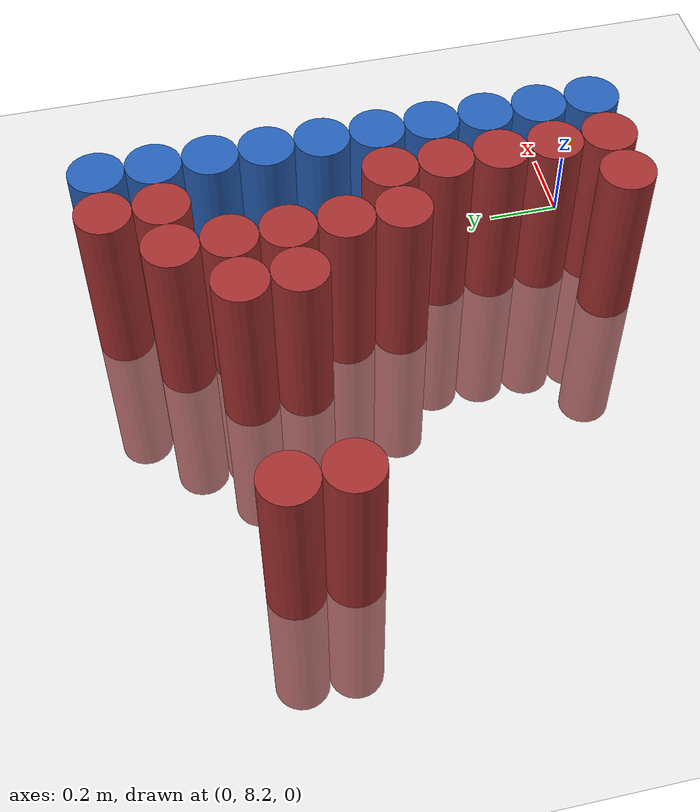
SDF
<sdf version="1.6">
 <world name="default">
  <model name="ground_plane">
   <static>1</static>
   <link name="link">
    <collision name="collision">
     <geometry><plane><normal>0 0 1</normal><size>100 100</size></plane></geometry>
     <surface><friction><ode><mu>100</mu><mu2>50</mu2></ode></friction></surface>
    </collision>
    <visual name="visual">
     <cast_shadows>0</cast_shadows>
     <geometry><plane><normal>0 0 1</normal><size>100 100</size></plane></geometry>
     <material>
      <script><uri>file://media/materials/scripts/gazebo.material</uri><name>Gazebo/Grey</name></script>
     </material>
    </visual>
   </link>
  </model>
  <model name="unit_cylinder_156">
   <static>1</static>
   <pose>-1.125000 9.075000 0.000000 0.000000 0.000000 0.000000</pose>
   <link name="link">
    <inertial>
     <mass>1</mass>
     <inertia><ixx>0.145833</ixx><ixy>0</ixy><ixz>0</ixz><iyy>0.145833</iyy><iyz>0</iyz><izz>0.125</izz></inertia>
    </inertial>
    <collision name="collision">
     <geometry><cylinder><radius>0.075000</radius><length>1</length></cylinder></geometry>
    </collision>
    <visual name="visual">
     <geometry><cylinder><radius>0.075000</radius><length>1</length></cylinder></geometry>
     <material>
      <ambient>0.648000 0.192000 0.192000 1</ambient>
      <diffuse>0.648000 0.192000 0.192000 1</diffuse>
     </material>
     <material>
      <script><name>Gazebo/Grey</name><uri>file://media/materials/scripts/gazebo.material</uri></script>
     </material>
    </visual>
   </link>
  </model>
  <model name="unit_cylinder_157">
   <static>1</static>
   <pose>-1.125000 9.225000 0.000000 0.000000 0.000000 0.000000</pose>
   <link name="link">
    <inertial>
     <mass>1</mass>
     <inertia><ixx>0.145833</ixx><ixy>0</ixy><ixz>0</ixz><iyy>0.145833</iyy><iyz>0</iyz><izz>0.125</izz></inertia>
    </inertial>
    <collision name="collision">
     <geometry><cylinder><radius>0.075000</radius><length>1</length></cylinder></geometry>
    </collision>
    <visual name="visual">
     <geometry><cylinder><radius>0.075000</radius><length>1</length></cylinder></geometry>
     <material>
      <ambient>0.648000 0.192000 0.192000 1</ambient>
      <diffuse>0.648000 0.192000 0.192000 1</diffuse>
     </material>
     <material>
      <script><name>Gazebo/Grey</name><uri>file://media/materials/scripts/gazebo.material</uri></script>
     </material>
    </visual>
   </link>
  </model>
  <model name="unit_cylinder_165">
   <static>1</static>
   <pose>-0.525000 9.075000 0.000000 0.000000 0.000000 0.000000</pose>
   <link name="link">
    <inertial>
     <mass>1</mass>
     <inertia><ixx>0.145833</ixx><ixy>0</ixy><ixz>0</ixz><iyy>0.145833</iyy><iyz>0</iyz><izz>0.125</izz></inertia>
    </inertial>
    <collision name="collision">
     <geometry><cylinder><radius>0.075000</radius><length>1</length></cylinder></geometry>
    </collision>
    <visual name="visual">
     <geometry><cylinder><radius>0.075000</radius><length>1</length></cylinder></geometry>
     <material>
      <ambient>0.648000 0.192000 0.192000 1</ambient>
      <diffuse>0.648000 0.192000 0.192000 1</diffuse>
     </material>
     <material>
      <script><name>Gazebo/Grey</name><uri>file://media/materials/scripts/gazebo.material</uri></script>
     </material>
    </visual>
   </link>
  </model>
  <model name="unit_cylinder_166">
   <static>1</static>
   <pose>-0.525000 9.225000 0.000000 0.000000 0.000000 0.000000</pose>
   <link name="link">
    <inertial>
     <mass>1</mass>
     <inertia><ixx>0.145833</ixx><ixy>0</ixy><ixz>0</ixz><iyy>0.145833</iyy><iyz>0</iyz><izz>0.125</izz></inertia>
    </inertial>
    <collision name="collision">
     <geometry><cylinder><radius>0.075000</radius><length>1</length></cylinder></geometry>
    </collision>
    <visual name="visual">
     <geometry><cylinder><radius>0.075000</radius><length>1</length></cylinder></geometry>
     <material>
      <ambient>0.648000 0.192000 0.192000 1</ambient>
      <diffuse>0.648000 0.192000 0.192000 1</diffuse>
     </material>
     <material>
      <script><name>Gazebo/Grey</name><uri>file://media/materials/scripts/gazebo.material</uri></script>
     </material>
    </visual>
   </link>
  </model>
  <model name="unit_cylinder_169">
   <static>1</static>
   <pose>-0.375000 8.175000 0.000000 0.000000 0.000000 0.000000</pose>
   <link name="link">
    <inertial>
     <mass>1</mass>
     <inertia><ixx>0.145833</ixx><ixy>0</ixy><ixz>0</ixz><iyy>0.145833</iyy><iyz>0</iyz><izz>0.125</izz></inertia>
    </inertial>
    <collision name="collision">
     <geometry><cylinder><radius>0.075000</radius><length>1</length></cylinder></geometry>
    </collision>
    <visual name="visual">
     <geometry><cylinder><radius>0.075000</radius><length>1</length></cylinder></geometry>
     <material>
      <ambient>0.648000 0.192000 0.192000 1</ambient>
      <diffuse>0.648000 0.192000 0.192000 1</diffuse>
     </material>
     <material>
      <script><name>Gazebo/Grey</name><uri>file://media/materials/scripts/gazebo.material</uri></script>
     </material>
    </visual>
   </link>
  </model>
  <model name="unit_cylinder_170">
   <static>1</static>
   <pose>-0.375000 8.775000 0.000000 0.000000 0.000000 0.000000</pose>
   <link name="link">
    <inertial>
     <mass>1</mass>
     <inertia><ixx>0.145833</ixx><ixy>0</ixy><ixz>0</ixz><iyy>0.145833</iyy><iyz>0</iyz><izz>0.125</izz></inertia>
    </inertial>
    <collision name="collision">
     <geometry><cylinder><radius>0.075000</radius><length>1</length></cylinder></geometry>
    </collision>
    <visual name="visual">
     <geometry><cylinder><radius>0.075000</radius><length>1</length></cylinder></geometry>
     <material>
      <ambient>0.648000 0.192000 0.192000 1</ambient>
      <diffuse>0.648000 0.192000 0.192000 1</diffuse>
     </material>
     <material>
      <script><name>Gazebo/Grey</name><uri>file://media/materials/scripts/gazebo.material</uri></script>
     </material>
    </visual>
   </link>
  </model>
  <model name="unit_cylinder_171">
   <static>1</static>
   <pose>-0.375000 8.925000 0.000000 0.000000 0.000000 0.000000</pose>
   <link name="link">
    <inertial>
     <mass>1</mass>
     <inertia><ixx>0.145833</ixx><ixy>0</ixy><ixz>0</ixz><iyy>0.145833</iyy><iyz>0</iyz><izz>0.125</izz></inertia>
    </inertial>
    <collision name="collision">
     <geometry><cylinder><radius>0.075000</radius><length>1</length></cylinder></geometry>
    </collision>
    <visual name="visual">
     <geometry><cylinder><radius>0.075000</radius><length>1</length></cylinder></geometry>
     <material>
      <ambient>0.648000 0.192000 0.192000 1</ambient>
      <diffuse>0.648000 0.192000 0.192000 1</diffuse>
     </material>
     <material>
      <script><name>Gazebo/Grey</name><uri>file://media/materials/scripts/gazebo.material</uri></script>
     </material>
    </visual>
   </link>
  </model>
  <model name="unit_cylinder_172">
   <static>1</static>
   <pose>-0.375000 9.075000 0.000000 0.000000 0.000000 0.000000</pose>
   <link name="link">
    <inertial>
     <mass>1</mass>
     <inertia><ixx>0.145833</ixx><ixy>0</ixy><ixz>0</ixz><iyy>0.145833</iyy><iyz>0</iyz><izz>0.125</izz></inertia>
    </inertial>
    <collision name="collision">
     <geometry><cylinder><radius>0.075000</radius><length>1</length></cylinder></geometry>
    </collision>
    <visual name="visual">
     <geometry><cylinder><radius>0.075000</radius><length>1</length></cylinder></geometry>
     <material>
      <ambient>0.648000 0.192000 0.192000 1</ambient>
      <diffuse>0.648000 0.192000 0.192000 1</diffuse>
     </material>
     <material>
      <script><name>Gazebo/Grey</name><uri>file://media/materials/scripts/gazebo.material</uri></script>
     </material>
    </visual>
   </link>
  </model>
  <model name="unit_cylinder_173">
   <static>1</static>
   <pose>-0.375000 9.225000 0.000000 0.000000 0.000000 0.000000</pose>
   <link name="link">
    <inertial>
     <mass>1</mass>
     <inertia><ixx>0.145833</ixx><ixy>0</ixy><ixz>0</ixz><iyy>0.145833</iyy><iyz>0</iyz><izz>0.125</izz></inertia>
    </inertial>
    <collision name="collision">
     <geometry><cylinder><radius>0.075000</radius><length>1</length></cylinder></geometry>
    </collision>
    <visual name="visual">
     <geometry><cylinder><radius>0.075000</radius><length>1</length></cylinder></geometry>
     <material>
      <ambient>0.648000 0.192000 0.192000 1</ambient>
      <diffuse>0.648000 0.192000 0.192000 1</diffuse>
     </material>
     <material>
      <script><name>Gazebo/Grey</name><uri>file://media/materials/scripts/gazebo.material</uri></script>
     </material>
    </visual>
   </link>
  </model>
  <model name="unit_cylinder_174">
   <static>1</static>
   <pose>-0.375000 9.375000 0.000000 0.000000 0.000000 0.000000</pose>
   <link name="link">
    <inertial>
     <mass>1</mass>
     <inertia><ixx>0.145833</ixx><ixy>0</ixy><ixz>0</ixz><iyy>0.145833</iyy><iyz>0</iyz><izz>0.125</izz></inertia>
    </inertial>
    <collision name="collision">
     <geometry><cylinder><radius>0.075000</radius><length>1</length></cylinder></geometry>
    </collision>
    <visual name="visual">
     <geometry><cylinder><radius>0.075000</radius><length>1</length></cylinder></geometry>
     <material>
      <ambient>0.648000 0.192000 0.192000 1</ambient>
      <diffuse>0.648000 0.192000 0.192000 1</diffuse>
     </material>
     <material>
      <script><name>Gazebo/Grey</name><uri>file://media/materials/scripts/gazebo.material</uri></script>
     </material>
    </visual>
   </link>
  </model>
  <model name="unit_cylinder_179">
   <static>1</static>
   <pose>-0.225000 8.175000 0.000000 0.000000 0.000000 0.000000</pose>
   <link name="link">
    <inertial>
     <mass>1</mass>
     <inertia><ixx>0.145833</ixx><ixy>0</ixy><ixz>0</ixz><iyy>0.145833</iyy><iyz>0</iyz><izz>0.125</izz></inertia>
    </inertial>
    <collision name="collision">
     <geometry><cylinder><radius>0.075000</radius><length>1</length></cylinder></geometry>
    </collision>
    <visual name="visual">
     <geometry><cylinder><radius>0.075000</radius><length>1</length></cylinder></geometry>
     <material>
      <ambient>0.648000 0.192000 0.192000 1</ambient>
      <diffuse>0.648000 0.192000 0.192000 1</diffuse>
     </material>
     <material>
      <script><name>Gazebo/Grey</name><uri>file://media/materials/scripts/gazebo.material</uri></script>
     </material>
    </visual>
   </link>
  </model>
  <model name="unit_cylinder_180">
   <static>1</static>
   <pose>-0.225000 8.325000 0.000000 0.000000 0.000000 0.000000</pose>
   <link name="link">
    <inertial>
     <mass>1</mass>
     <inertia><ixx>0.145833</ixx><ixy>0</ixy><ixz>0</ixz><iyy>0.145833</iyy><iyz>0</iyz><izz>0.125</izz></inertia>
    </inertial>
    <collision name="collision">
     <geometry><cylinder><radius>0.075000</radius><length>1</length></cylinder></geometry>
    </collision>
    <visual name="visual">
     <geometry><cylinder><radius>0.075000</radius><length>1</length></cylinder></geometry>
     <material>
      <ambient>0.648000 0.192000 0.192000 1</ambient>
      <diffuse>0.648000 0.192000 0.192000 1</diffuse>
     </material>
     <material>
      <script><name>Gazebo/Grey</name><uri>file://media/materials/scripts/gazebo.material</uri></script>
     </material>
    </visual>
   </link>
  </model>
  <model name="unit_cylinder_181">
   <static>1</static>
   <pose>-0.225000 8.475000 0.000000 0.000000 0.000000 0.000000</pose>
   <link name="link">
    <inertial>
     <mass>1</mass>
     <inertia><ixx>0.145833</ixx><ixy>0</ixy><ixz>0</ixz><iyy>0.145833</iyy><iyz>0</iyz><izz>0.125</izz></inertia>
    </inertial>
    <collision name="collision">
     <geometry><cylinder><radius>0.075000</radius><length>1</length></cylinder></geometry>
    </collision>
    <visual name="visual">
     <geometry><cylinder><radius>0.075000</radius><length>1</length></cylinder></geometry>
     <material>
      <ambient>0.648000 0.192000 0.192000 1</ambient>
      <diffuse>0.648000 0.192000 0.192000 1</diffuse>
     </material>
     <material>
      <script><name>Gazebo/Grey</name><uri>file://media/materials/scripts/gazebo.material</uri></script>
     </material>
    </visual>
   </link>
  </model>
  <model name="unit_cylinder_182">
   <static>1</static>
   <pose>-0.225000 8.625000 0.000000 0.000000 0.000000 0.000000</pose>
   <link name="link">
    <inertial>
     <mass>1</mass>
     <inertia><ixx>0.145833</ixx><ixy>0</ixy><ixz>0</ixz><iyy>0.145833</iyy><iyz>0</iyz><izz>0.125</izz></inertia>
    </inertial>
    <collision name="collision">
     <geometry><cylinder><radius>0.075000</radius><length>1</length></cylinder></geometry>
    </collision>
    <visual name="visual">
     <geometry><cylinder><radius>0.075000</radius><length>1</length></cylinder></geometry>
     <material>
      <ambient>0.648000 0.192000 0.192000 1</ambient>
      <diffuse>0.648000 0.192000 0.192000 1</diffuse>
     </material>
     <material>
      <script><name>Gazebo/Grey</name><uri>file://media/materials/scripts/gazebo.material</uri></script>
     </material>
    </visual>
   </link>
  </model>
  <model name="unit_cylinder_183">
   <static>1</static>
   <pose>-0.225000 8.775000 0.000000 0.000000 0.000000 0.000000</pose>
   <link name="link">
    <inertial>
     <mass>1</mass>
     <inertia><ixx>0.145833</ixx><ixy>0</ixy><ixz>0</ixz><iyy>0.145833</iyy><iyz>0</iyz><izz>0.125</izz></inertia>
    </inertial>
    <collision name="collision">
     <geometry><cylinder><radius>0.075000</radius><length>1</length></cylinder></geometry>
    </collision>
    <visual name="visual">
     <geometry><cylinder><radius>0.075000</radius><length>1</length></cylinder></geometry>
     <material>
      <ambient>0.648000 0.192000 0.192000 1</ambient>
      <diffuse>0.648000 0.192000 0.192000 1</diffuse>
     </material>
     <material>
      <script><name>Gazebo/Grey</name><uri>file://media/materials/scripts/gazebo.material</uri></script>
     </material>
    </visual>
   </link>
  </model>
  <model name="unit_cylinder_184">
   <static>1</static>
   <pose>-0.225000 9.375000 0.000000 0.000000 0.000000 0.000000</pose>
   <link name="link">
    <inertial>
     <mass>1</mass>
     <inertia><ixx>0.145833</ixx><ixy>0</ixy><ixz>0</ixz><iyy>0.145833</iyy><iyz>0</iyz><izz>0.125</izz></inertia>
    </inertial>
    <collision name="collision">
     <geometry><cylinder><radius>0.075000</radius><length>1</length></cylinder></geometry>
    </collision>
    <visual name="visual">
     <geometry><cylinder><radius>0.075000</radius><length>1</length></cylinder></geometry>
     <material>
      <ambient>0.648000 0.192000 0.192000 1</ambient>
      <diffuse>0.648000 0.192000 0.192000 1</diffuse>
     </material>
     <material>
      <script><name>Gazebo/Grey</name><uri>file://media/materials/scripts/gazebo.material</uri></script>
     </material>
    </visual>
   </link>
  </model>
  <model name="unit_cylinder_185">
   <static>1</static>
   <pose>-0.225000 9.525000 0.000000 0.000000 0.000000 0.000000</pose>
   <link name="link">
    <inertial>
     <mass>1</mass>
     <inertia><ixx>0.145833</ixx><ixy>0</ixy><ixz>0</ixz><iyy>0.145833</iyy><iyz>0</iyz><izz>0.125</izz></inertia>
    </inertial>
    <collision name="collision">
     <geometry><cylinder><radius>0.075000</radius><length>1</length></cylinder></geometry>
    </collision>
    <visual name="visual">
     <geometry><cylinder><radius>0.075000</radius><length>1</length></cylinder></geometry>
     <material>
      <ambient>0.648000 0.192000 0.192000 1</ambient>
      <diffuse>0.648000 0.192000 0.192000 1</diffuse>
     </material>
     <material>
      <script><name>Gazebo/Grey</name><uri>file://media/materials/scripts/gazebo.material</uri></script>
     </material>
    </visual>
   </link>
  </model>
  <model name="unit_cylinder_206">
   <static>1</static>
   <pose>-0.075000 8.175000 0.000000 0.000000 0.000000 0.000000</pose>
   <link name="link">
    <inertial>
     <mass>1</mass>
     <inertia><ixx>0.145833</ixx><ixy>0</ixy><ixz>0</ixz><iyy>0.145833</iyy><iyz>0</iyz><izz>0.125</izz></inertia>
    </inertial>
    <collision name="collision">
     <geometry><cylinder><radius>0.075000</radius><length>1</length></cylinder></geometry>
    </collision>
    <visual name="visual">
     <geometry><cylinder><radius>0.075000</radius><length>1</length></cylinder></geometry>
     <material>
      <ambient>0.152000 0.379000 0.720000 1</ambient>
      <diffuse>0.152000 0.379000 0.720000 1</diffuse>
     </material>
     <material>
      <script><name>Gazebo/Grey</name><uri>file://media/materials/scripts/gazebo.material</uri></script>
     </material>
    </visual>
   </link>
  </model>
  <model name="unit_cylinder_207">
   <static>1</static>
   <pose>-0.075000 8.325000 0.000000 0.000000 0.000000 0.000000</pose>
   <link name="link">
    <inertial>
     <mass>1</mass>
     <inertia><ixx>0.145833</ixx><ixy>0</ixy><ixz>0</ixz><iyy>0.145833</iyy><iyz>0</iyz><izz>0.125</izz></inertia>
    </inertial>
    <collision name="collision">
     <geometry><cylinder><radius>0.075000</radius><length>1</length></cylinder></geometry>
    </collision>
    <visual name="visual">
     <geometry><cylinder><radius>0.075000</radius><length>1</length></cylinder></geometry>
     <material>
      <ambient>0.152000 0.379000 0.720000 1</ambient>
      <diffuse>0.152000 0.379000 0.720000 1</diffuse>
     </material>
     <material>
      <script><name>Gazebo/Grey</name><uri>file://media/materials/scripts/gazebo.material</uri></script>
     </material>
    </visual>
   </link>
  </model>
  <model name="unit_cylinder_208">
   <static>1</static>
   <pose>-0.075000 8.475000 0.000000 0.000000 0.000000 0.000000</pose>
   <link name="link">
    <inertial>
     <mass>1</mass>
     <inertia><ixx>0.145833</ixx><ixy>0</ixy><ixz>0</ixz><iyy>0.145833</iyy><iyz>0</iyz><izz>0.125</izz></inertia>
    </inertial>
    <collision name="collision">
     <geometry><cylinder><radius>0.075000</radius><length>1</length></cylinder></geometry>
    </collision>
    <visual name="visual">
     <geometry><cylinder><radius>0.075000</radius><length>1</length></cylinder></geometry>
     <material>
      <ambient>0.152000 0.379000 0.720000 1</ambient>
      <diffuse>0.152000 0.379000 0.720000 1</diffuse>
     </material>
     <material>
      <script><name>Gazebo/Grey</name><uri>file://media/materials/scripts/gazebo.material</uri></script>
     </material>
    </visual>
   </link>
  </model>
  <model name="unit_cylinder_209">
   <static>1</static>
   <pose>-0.075000 8.625000 0.000000 0.000000 0.000000 0.000000</pose>
   <link name="link">
    <inertial>
     <mass>1</mass>
     <inertia><ixx>0.145833</ixx><ixy>0</ixy><ixz>0</ixz><iyy>0.145833</iyy><iyz>0</iyz><izz>0.125</izz></inertia>
    </inertial>
    <collision name="collision">
     <geometry><cylinder><radius>0.075000</radius><length>1</length></cylinder></geometry>
    </collision>
    <visual name="visual">
     <geometry><cylinder><radius>0.075000</radius><length>1</length></cylinder></geometry>
     <material>
      <ambient>0.152000 0.379000 0.720000 1</ambient>
      <diffuse>0.152000 0.379000 0.720000 1</diffuse>
     </material>
     <material>
      <script><name>Gazebo/Grey</name><uri>file://media/materials/scripts/gazebo.material</uri></script>
     </material>
    </visual>
   </link>
  </model>
  <model name="unit_cylinder_210">
   <static>1</static>
   <pose>-0.075000 8.775000 0.000000 0.000000 0.000000 0.000000</pose>
   <link name="link">
    <inertial>
     <mass>1</mass>
     <inertia><ixx>0.145833</ixx><ixy>0</ixy><ixz>0</ixz><iyy>0.145833</iyy><iyz>0</iyz><izz>0.125</izz></inertia>
    </inertial>
    <collision name="collision">
     <geometry><cylinder><radius>0.075000</radius><length>1</length></cylinder></geometry>
    </collision>
    <visual name="visual">
     <geometry><cylinder><radius>0.075000</radius><length>1</length></cylinder></geometry>
     <material>
      <ambient>0.152000 0.379000 0.720000 1</ambient>
      <diffuse>0.152000 0.379000 0.720000 1</diffuse>
     </material>
     <material>
      <script><name>Gazebo/Grey</name><uri>file://media/materials/scripts/gazebo.material</uri></script>
     </material>
    </visual>
   </link>
  </model>
  <model name="unit_cylinder_211">
   <static>1</static>
   <pose>-0.075000 8.925000 0.000000 0.000000 0.000000 0.000000</pose>
   <link name="link">
    <inertial>
     <mass>1</mass>
     <inertia><ixx>0.145833</ixx><ixy>0</ixy><ixz>0</ixz><iyy>0.145833</iyy><iyz>0</iyz><izz>0.125</izz></inertia>
    </inertial>
    <collision name="collision">
     <geometry><cylinder><radius>0.075000</radius><length>1</length></cylinder></geometry>
    </collision>
    <visual name="visual">
     <geometry><cylinder><radius>0.075000</radius><length>1</length></cylinder></geometry>
     <material>
      <ambient>0.152000 0.379000 0.720000 1</ambient>
      <diffuse>0.152000 0.379000 0.720000 1</diffuse>
     </material>
     <material>
      <script><name>Gazebo/Grey</name><uri>file://media/materials/scripts/gazebo.material</uri></script>
     </material>
    </visual>
   </link>
  </model>
  <model name="unit_cylinder_212">
   <static>1</static>
   <pose>-0.075000 9.075000 0.000000 0.000000 0.000000 0.000000</pose>
   <link name="link">
    <inertial>
     <mass>1</mass>
     <inertia><ixx>0.145833</ixx><ixy>0</ixy><ixz>0</ixz><iyy>0.145833</iyy><iyz>0</iyz><izz>0.125</izz></inertia>
    </inertial>
    <collision name="collision">
     <geometry><cylinder><radius>0.075000</radius><length>1</length></cylinder></geometry>
    </collision>
    <visual name="visual">
     <geometry><cylinder><radius>0.075000</radius><length>1</length></cylinder></geometry>
     <material>
      <ambient>0.152000 0.379000 0.720000 1</ambient>
      <diffuse>0.152000 0.379000 0.720000 1</diffuse>
     </material>
     <material>
      <script><name>Gazebo/Grey</name><uri>file://media/materials/scripts/gazebo.material</uri></script>
     </material>
    </visual>
   </link>
  </model>
  <model name="unit_cylinder_213">
   <static>1</static>
   <pose>-0.075000 9.225000 0.000000 0.000000 0.000000 0.000000</pose>
   <link name="link">
    <inertial>
     <mass>1</mass>
     <inertia><ixx>0.145833</ixx><ixy>0</ixy><ixz>0</ixz><iyy>0.145833</iyy><iyz>0</iyz><izz>0.125</izz></inertia>
    </inertial>
    <collision name="collision">
     <geometry><cylinder><radius>0.075000</radius><length>1</length></cylinder></geometry>
    </collision>
    <visual name="visual">
     <geometry><cylinder><radius>0.075000</radius><length>1</length></cylinder></geometry>
     <material>
      <ambient>0.152000 0.379000 0.720000 1</ambient>
      <diffuse>0.152000 0.379000 0.720000 1</diffuse>
     </material>
     <material>
      <script><name>Gazebo/Grey</name><uri>file://media/materials/scripts/gazebo.material</uri></script>
     </material>
    </visual>
   </link>
  </model>
  <model name="unit_cylinder_214">
   <static>1</static>
   <pose>-0.075000 9.375000 0.000000 0.000000 0.000000 0.000000</pose>
   <link name="link">
    <inertial>
     <mass>1</mass>
     <inertia><ixx>0.145833</ixx><ixy>0</ixy><ixz>0</ixz><iyy>0.145833</iyy><iyz>0</iyz><izz>0.125</izz></inertia>
    </inertial>
    <collision name="collision">
     <geometry><cylinder><radius>0.075000</radius><length>1</length></cylinder></geometry>
    </collision>
    <visual name="visual">
     <geometry><cylinder><radius>0.075000</radius><length>1</length></cylinder></geometry>
     <material>
      <ambient>0.152000 0.379000 0.720000 1</ambient>
      <diffuse>0.152000 0.379000 0.720000 1</diffuse>
     </material>
     <material>
      <script><name>Gazebo/Grey</name><uri>file://media/materials/scripts/gazebo.material</uri></script>
     </material>
    </visual>
   </link>
  </model>
  <model name="unit_cylinder_215">
   <static>1</static>
   <pose>-0.075000 9.525000 0.000000 0.000000 0.000000 0.000000</pose>
   <link name="link">
    <inertial>
     <mass>1</mass>
     <inertia><ixx>0.145833</ixx><ixy>0</ixy><ixz>0</ixz><iyy>0.145833</iyy><iyz>0</iyz><izz>0.125</izz></inertia>
    </inertial>
    <collision name="collision">
     <geometry><cylinder><radius>0.075000</radius><length>1</length></cylinder></geometry>
    </collision>
    <visual name="visual">
     <geometry><cylinder><radius>0.075000</radius><length>1</length></cylinder></geometry>
     <material>
      <ambient>0.152000 0.379000 0.720000 1</ambient>
      <diffuse>0.152000 0.379000 0.720000 1</diffuse>
     </material>
     <material>
      <script><name>Gazebo/Grey</name><uri>file://media/materials/scripts/gazebo.material</uri></script>
     </material>
    </visual>
   </link>
  </model>
 </world>
</sdf>
